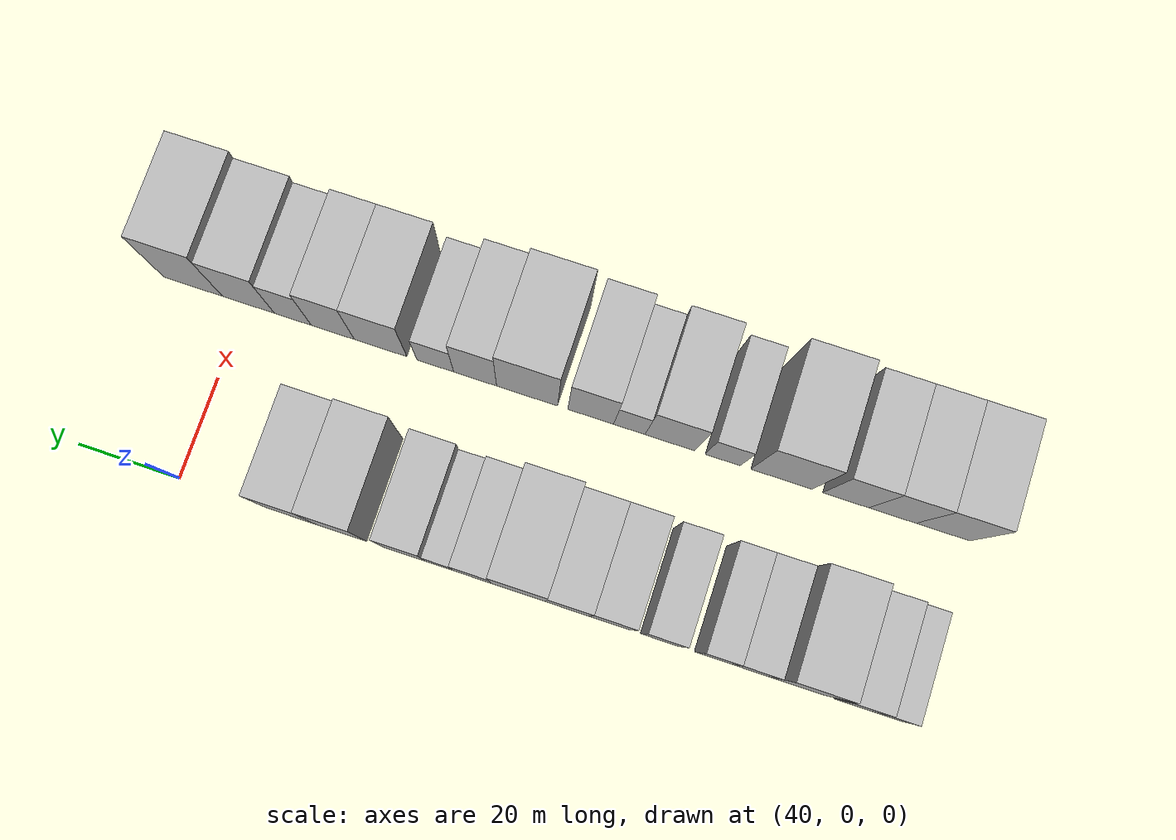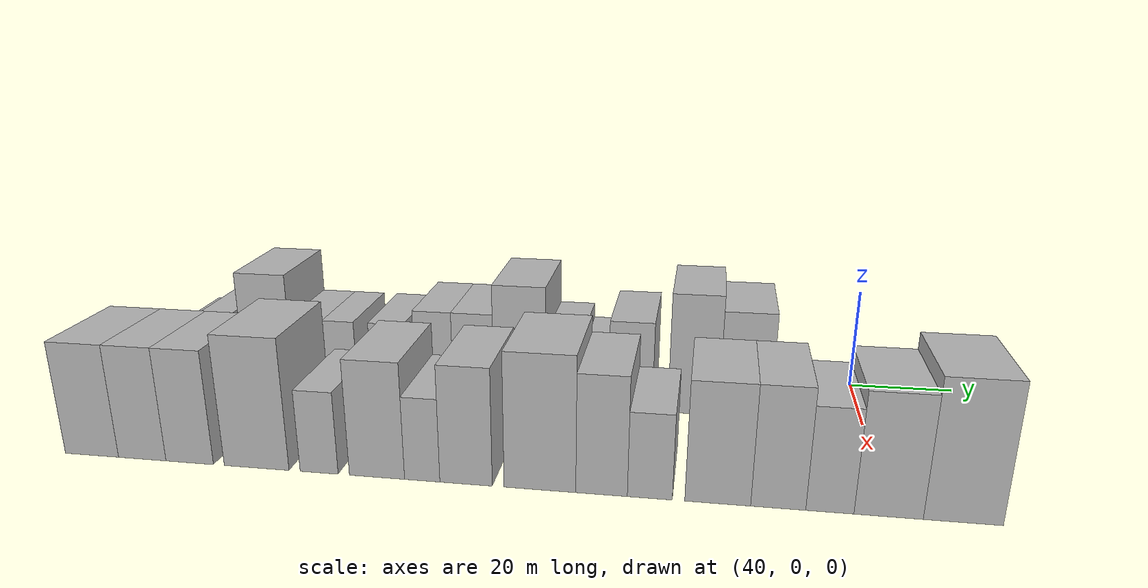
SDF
<sdf version="1.6">
 <world name="default">
  <model name="building_19">
   <static>1</static>
   <pose>50.0000 -134.9416 0 0.000000 0.000000 0.000000</pose>
   <link name="link">
    <pose>0 0 6.00 0 0 0</pose>
    <collision name="collision"><geometry><box><size>20.0000 5.3639 12.0000</size></box></geometry></collision>
    <visual name="visual">
     <cast_shadows>0</cast_shadows>
     <geometry><box><size>20.0000 5.3639 12.0000</size></box></geometry>
     <material>
      <script>
       <uri>model://HANNAS_wall/materials/scripts</uri>
       <uri>model://HANNAS_wall/materials/textures</uri>
       <name>vrc/HANNAS_wall</name>
      </script>
     </material>
    </visual>
   </link>
  </model>
  <model name="building_20">
   <static>1</static>
   <pose>50.0000 -128.8248 0 0.000000 0.000000 0.000000</pose>
   <link name="link">
    <pose>0 0 7.50 0 0 0</pose>
    <collision name="collision"><geometry><box><size>20.0000 6.8697 15.0000</size></box></geometry></collision>
    <visual name="visual">
     <cast_shadows>0</cast_shadows>
     <geometry><box><size>20.0000 6.8697 15.0000</size></box></geometry>
     <material>
      <script>
       <uri>model://HANNAS_wall/materials/scripts</uri>
       <uri>model://HANNAS_wall/materials/textures</uri>
       <name>vrc/HANNAS_wall</name>
      </script>
     </material>
    </visual>
   </link>
  </model>
  <model name="building_21">
   <static>1</static>
   <pose>50.0000 -118.1324 0 0.000000 0.000000 0.000000</pose>
   <link name="link">
    <pose>0 0 12.00 0 0 0</pose>
    <collision name="collision"><geometry><box><size>20.0000 10.5152 24.0000</size></box></geometry></collision>
    <visual name="visual">
     <cast_shadows>0</cast_shadows>
     <geometry><box><size>20.0000 10.5152 24.0000</size></box></geometry>
     <material>
      <script>
       <uri>model://HANNAS_wall/materials/scripts</uri>
       <uri>model://HANNAS_wall/materials/textures</uri>
       <name>vrc/HANNAS_wall</name>
      </script>
     </material>
    </visual>
   </link>
  </model>
  <model name="building_22">
   <static>1</static>
   <pose>50.0000 -109.2981 0 0.000000 0.000000 0.000000</pose>
   <link name="link">
    <pose>0 0 7.50 0 0 0</pose>
    <collision name="collision"><geometry><box><size>20.0000 7.1534 15.0000</size></box></geometry></collision>
    <visual name="visual">
     <cast_shadows>0</cast_shadows>
     <geometry><box><size>20.0000 7.1534 15.0000</size></box></geometry>
     <material>
      <script>
       <uri>model://HANNAS_wall/materials/scripts</uri>
       <uri>model://HANNAS_wall/materials/textures</uri>
       <name>vrc/HANNAS_wall</name>
      </script>
     </material>
    </visual>
   </link>
  </model>
  <model name="building_23">
   <static>1</static>
   <pose>50.0000 -102.4852 0 0.000000 0.000000 0.000000</pose>
   <link name="link">
    <pose>0 0 7.50 0 0 0</pose>
    <collision name="collision"><geometry><box><size>20.0000 6.4725 15.0000</size></box></geometry></collision>
    <visual name="visual">
     <cast_shadows>0</cast_shadows>
     <geometry><box><size>20.0000 6.4725 15.0000</size></box></geometry>
     <material>
      <script>
       <uri>model://HANNAS_wall/materials/scripts</uri>
       <uri>model://HANNAS_wall/materials/textures</uri>
       <name>vrc/HANNAS_wall</name>
      </script>
     </material>
    </visual>
   </link>
  </model>
  <model name="building_24">
   <static>1</static>
   <pose>50.0000 -92.6460 0 0.000000 0.000000 0.000000</pose>
   <link name="link">
    <pose>0 0 7.50 0 0 0</pose>
    <collision name="collision"><geometry><box><size>20.0000 7.2058 15.0000</size></box></geometry></collision>
    <visual name="visual">
     <cast_shadows>0</cast_shadows>
     <geometry><box><size>20.0000 7.2058 15.0000</size></box></geometry>
     <material>
      <script>
       <uri>model://HANNAS_wall/materials/scripts</uri>
       <uri>model://HANNAS_wall/materials/textures</uri>
       <name>vrc/HANNAS_wall</name>
      </script>
     </material>
    </visual>
   </link>
  </model>
  <model name="building_25">
   <static>1</static>
   <pose>50.0000 -83.1704 0 0.000000 0.000000 0.000000</pose>
   <link name="link">
    <pose>0 0 9.00 0 0 0</pose>
    <collision name="collision"><geometry><box><size>20.0000 7.7455 18.0000</size></box></geometry></collision>
    <visual name="visual">
     <cast_shadows>0</cast_shadows>
     <geometry><box><size>20.0000 7.7455 18.0000</size></box></geometry>
     <material>
      <script>
       <uri>model://HANNAS_wall/materials/scripts</uri>
       <uri>model://HANNAS_wall/materials/textures</uri>
       <name>vrc/HANNAS_wall</name>
      </script>
     </material>
    </visual>
   </link>
  </model>
  <model name="building_26">
   <static>1</static>
   <pose>50.0000 -75.1725 0 0.000000 0.000000 0.000000</pose>
   <link name="link">
    <pose>0 0 9.00 0 0 0</pose>
    <collision name="collision"><geometry><box><size>20.0000 8.2501 18.0000</size></box></geometry></collision>
    <visual name="visual">
     <cast_shadows>0</cast_shadows>
     <geometry><box><size>20.0000 8.2501 18.0000</size></box></geometry>
     <material>
      <script>
       <uri>model://HANNAS_wall/materials/scripts</uri>
       <uri>model://HANNAS_wall/materials/textures</uri>
       <name>vrc/HANNAS_wall</name>
      </script>
     </material>
    </visual>
   </link>
  </model>
  <model name="building_27">
   <static>1</static>
   <pose>50.0000 -65.7889 0 0.000000 0.000000 0.000000</pose>
   <link name="link">
    <pose>0 0 12.00 0 0 0</pose>
    <collision name="collision"><geometry><box><size>20.0000 10.5172 24.0000</size></box></geometry></collision>
    <visual name="visual">
     <cast_shadows>0</cast_shadows>
     <geometry><box><size>20.0000 10.5172 24.0000</size></box></geometry>
     <material>
      <script>
       <uri>model://HANNAS_wall/materials/scripts</uri>
       <uri>model://HANNAS_wall/materials/textures</uri>
       <name>vrc/HANNAS_wall</name>
      </script>
     </material>
    </visual>
   </link>
  </model>
  <model name="building_28">
   <static>1</static>
   <pose>50.0000 -56.9479 0 0.000000 0.000000 0.000000</pose>
   <link name="link">
    <pose>0 0 7.50 0 0 0</pose>
    <collision name="collision"><geometry><box><size>20.0000 7.1647 15.0000</size></box></geometry></collision>
    <visual name="visual">
     <cast_shadows>0</cast_shadows>
     <geometry><box><size>20.0000 7.1647 15.0000</size></box></geometry>
     <material>
      <script>
       <uri>model://HANNAS_wall/materials/scripts</uri>
       <uri>model://HANNAS_wall/materials/textures</uri>
       <name>vrc/HANNAS_wall</name>
      </script>
     </material>
    </visual>
   </link>
  </model>
  <model name="building_29">
   <static>1</static>
   <pose>50.0000 -50.7540 0 0.000000 0.000000 0.000000</pose>
   <link name="link">
    <pose>0 0 6.00 0 0 0</pose>
    <collision name="collision"><geometry><box><size>20.0000 5.2231 12.0000</size></box></geometry></collision>
    <visual name="visual">
     <cast_shadows>0</cast_shadows>
     <geometry><box><size>20.0000 5.2231 12.0000</size></box></geometry>
     <material>
      <script>
       <uri>model://HANNAS_wall/materials/scripts</uri>
       <uri>model://HANNAS_wall/materials/textures</uri>
       <name>vrc/HANNAS_wall</name>
      </script>
     </material>
    </visual>
   </link>
  </model>
  <model name="building_30">
   <static>1</static>
   <pose>50.0000 -43.8688 0 0.000000 0.000000 0.000000</pose>
   <link name="link">
    <pose>0 0 9.00 0 0 0</pose>
    <collision name="collision"><geometry><box><size>20.0000 8.5474 18.0000</size></box></geometry></collision>
    <visual name="visual">
     <cast_shadows>0</cast_shadows>
     <geometry><box><size>20.0000 8.5474 18.0000</size></box></geometry>
     <material>
      <script>
       <uri>model://HANNAS_wall/materials/scripts</uri>
       <uri>model://HANNAS_wall/materials/textures</uri>
       <name>vrc/HANNAS_wall</name>
      </script>
     </material>
    </visual>
   </link>
  </model>
  <model name="building_31">
   <static>1</static>
   <pose>50.0000 -31.7296 0 0.000000 0.000000 0.000000</pose>
   <link name="link">
    <pose>0 0 12.00 0 0 0</pose>
    <collision name="collision"><geometry><box><size>20.0000 9.7308 24.0000</size></box></geometry></collision>
    <visual name="visual">
     <cast_shadows>0</cast_shadows>
     <geometry><box><size>20.0000 9.7308 24.0000</size></box></geometry>
     <material>
      <script>
       <uri>model://HANNAS_wall/materials/scripts</uri>
       <uri>model://HANNAS_wall/materials/textures</uri>
       <name>vrc/HANNAS_wall</name>
      </script>
     </material>
    </visual>
   </link>
  </model>
  <model name="building_32">
   <static>1</static>
   <pose>50.0000 -21.9422 0 0.000000 0.000000 0.000000</pose>
   <link name="link">
    <pose>0 0 10.50 0 0 0</pose>
    <collision name="collision"><geometry><box><size>20.0000 9.8439 21.0000</size></box></geometry></collision>
    <visual name="visual">
     <cast_shadows>0</cast_shadows>
     <geometry><box><size>20.0000 9.8439 21.0000</size></box></geometry>
     <material>
      <script>
       <uri>model://HANNAS_wall/materials/scripts</uri>
       <uri>model://HANNAS_wall/materials/textures</uri>
       <name>vrc/HANNAS_wall</name>
      </script>
     </material>
    </visual>
   </link>
  </model>
  <model name="building_75">
   <static>1</static>
   <pose>85.0000 -136.0924 0 0.000000 0.000000 0.000000</pose>
   <link name="link">
    <pose>0 0 10.50 0 0 0</pose>
    <collision name="collision"><geometry><box><size>20.0000 10.1938 21.0000</size></box></geometry></collision>
    <visual name="visual">
     <cast_shadows>0</cast_shadows>
     <geometry><box><size>20.0000 10.1938 21.0000</size></box></geometry>
     <material>
      <script>
       <uri>model://HANNAS_wall/materials/scripts</uri>
       <uri>model://HANNAS_wall/materials/textures</uri>
       <name>vrc/HANNAS_wall</name>
      </script>
     </material>
    </visual>
   </link>
  </model>
  <model name="building_76">
   <static>1</static>
   <pose>85.0000 -126.5070 0 0.000000 0.000000 0.000000</pose>
   <link name="link">
    <pose>0 0 10.50 0 0 0</pose>
    <collision name="collision"><geometry><box><size>20.0000 8.9769 21.0000</size></box></geometry></collision>
    <visual name="visual">
     <cast_shadows>0</cast_shadows>
     <geometry><box><size>20.0000 8.9769 21.0000</size></box></geometry>
     <material>
      <script>
       <uri>model://HANNAS_wall/materials/scripts</uri>
       <uri>model://HANNAS_wall/materials/textures</uri>
       <name>vrc/HANNAS_wall</name>
      </script>
     </material>
    </visual>
   </link>
  </model>
  <model name="building_77">
   <static>1</static>
   <pose>85.0000 -117.5985 0 0.000000 0.000000 0.000000</pose>
   <link name="link">
    <pose>0 0 10.50 0 0 0</pose>
    <collision name="collision"><geometry><box><size>20.0000 8.8401 21.0000</size></box></geometry></collision>
    <visual name="visual">
     <cast_shadows>0</cast_shadows>
     <geometry><box><size>20.0000 8.8401 21.0000</size></box></geometry>
     <material>
      <script>
       <uri>model://HANNAS_wall/materials/scripts</uri>
       <uri>model://HANNAS_wall/materials/textures</uri>
       <name>vrc/HANNAS_wall</name>
      </script>
     </material>
    </visual>
   </link>
  </model>
  <model name="building_78">
   <static>1</static>
   <pose>85.0000 -105.2745 0 0.000000 0.000000 0.000000</pose>
   <link name="link">
    <pose>0 0 12.00 0 0 0</pose>
    <collision name="collision"><geometry><box><size>20.0000 11.8079 24.0000</size></box></geometry></collision>
    <visual name="visual">
     <cast_shadows>0</cast_shadows>
     <geometry><box><size>20.0000 11.8079 24.0000</size></box></geometry>
     <material>
      <script>
       <uri>model://HANNAS_wall/materials/scripts</uri>
       <uri>model://HANNAS_wall/materials/textures</uri>
       <name>vrc/HANNAS_wall</name>
      </script>
     </material>
    </visual>
   </link>
  </model>
  <model name="building_79">
   <static>1</static>
   <pose>85.0000 -93.9713 0 0.000000 0.000000 0.000000</pose>
   <link name="link">
    <pose>0 0 7.50 0 0 0</pose>
    <collision name="collision"><geometry><box><size>20.0000 6.7985 15.0000</size></box></geometry></collision>
    <visual name="visual">
     <cast_shadows>0</cast_shadows>
     <geometry><box><size>20.0000 6.7985 15.0000</size></box></geometry>
     <material>
      <script>
       <uri>model://HANNAS_wall/materials/scripts</uri>
       <uri>model://HANNAS_wall/materials/textures</uri>
       <name>vrc/HANNAS_wall</name>
      </script>
     </material>
    </visual>
   </link>
  </model>
  <model name="building_80">
   <static>1</static>
   <pose>85.0000 -83.7237 0 0.000000 0.000000 0.000000</pose>
   <link name="link">
    <pose>0 0 10.50 0 0 0</pose>
    <collision name="collision"><geometry><box><size>20.0000 9.6968 21.0000</size></box></geometry></collision>
    <visual name="visual">
     <cast_shadows>0</cast_shadows>
     <geometry><box><size>20.0000 9.6968 21.0000</size></box></geometry>
     <material>
      <script>
       <uri>model://HANNAS_wall/materials/scripts</uri>
       <uri>model://HANNAS_wall/materials/textures</uri>
       <name>vrc/HANNAS_wall</name>
      </script>
     </material>
    </visual>
   </link>
  </model>
  <model name="building_81">
   <static>1</static>
   <pose>85.0000 -75.8164 0 0.000000 0.000000 0.000000</pose>
   <link name="link">
    <pose>0 0 7.50 0 0 0</pose>
    <collision name="collision"><geometry><box><size>20.0000 6.1177 15.0000</size></box></geometry></collision>
    <visual name="visual">
     <cast_shadows>0</cast_shadows>
     <geometry><box><size>20.0000 6.1177 15.0000</size></box></geometry>
     <material>
      <script>
       <uri>model://HANNAS_wall/materials/scripts</uri>
       <uri>model://HANNAS_wall/materials/textures</uri>
       <name>vrc/HANNAS_wall</name>
      </script>
     </material>
    </visual>
   </link>
  </model>
  <model name="building_82">
   <static>1</static>
   <pose>85.0000 -68.2785 0 0.000000 0.000000 0.000000</pose>
   <link name="link">
    <pose>0 0 10.50 0 0 0</pose>
    <collision name="collision"><geometry><box><size>20.0000 8.9581 21.0000</size></box></geometry></collision>
    <visual name="visual">
     <cast_shadows>0</cast_shadows>
     <geometry><box><size>20.0000 8.9581 21.0000</size></box></geometry>
     <material>
      <script>
       <uri>model://HANNAS_wall/materials/scripts</uri>
       <uri>model://HANNAS_wall/materials/textures</uri>
       <name>vrc/HANNAS_wall</name>
      </script>
     </material>
    </visual>
   </link>
  </model>
  <model name="building_83">
   <static>1</static>
   <pose>85.0000 -55.8044 0 0.000000 0.000000 0.000000</pose>
   <link name="link">
    <pose>0 0 12.00 0 0 0</pose>
    <collision name="collision"><geometry><box><size>20.0000 11.9902 24.0000</size></box></geometry></collision>
    <visual name="visual">
     <cast_shadows>0</cast_shadows>
     <geometry><box><size>20.0000 11.9902 24.0000</size></box></geometry>
     <material>
      <script>
       <uri>model://HANNAS_wall/materials/scripts</uri>
       <uri>model://HANNAS_wall/materials/textures</uri>
       <name>vrc/HANNAS_wall</name>
      </script>
     </material>
    </visual>
   </link>
  </model>
  <model name="building_84">
   <static>1</static>
   <pose>85.0000 -45.5765 0 0.000000 0.000000 0.000000</pose>
   <link name="link">
    <pose>0 0 10.50 0 0 0</pose>
    <collision name="collision"><geometry><box><size>20.0000 8.4657 21.0000</size></box></geometry></collision>
    <visual name="visual">
     <cast_shadows>0</cast_shadows>
     <geometry><box><size>20.0000 8.4657 21.0000</size></box></geometry>
     <material>
      <script>
       <uri>model://HANNAS_wall/materials/scripts</uri>
       <uri>model://HANNAS_wall/materials/textures</uri>
       <name>vrc/HANNAS_wall</name>
      </script>
     </material>
    </visual>
   </link>
  </model>
  <model name="building_85">
   <static>1</static>
   <pose>85.0000 -37.7026 0 0.000000 0.000000 0.000000</pose>
   <link name="link">
    <pose>0 0 7.50 0 0 0</pose>
    <collision name="collision"><geometry><box><size>20.0000 7.2822 15.0000</size></box></geometry></collision>
    <visual name="visual">
     <cast_shadows>0</cast_shadows>
     <geometry><box><size>20.0000 7.2822 15.0000</size></box></geometry>
     <material>
      <script>
       <uri>model://HANNAS_wall/materials/scripts</uri>
       <uri>model://HANNAS_wall/materials/textures</uri>
       <name>vrc/HANNAS_wall</name>
      </script>
     </material>
    </visual>
   </link>
  </model>
  <model name="building_86">
   <static>1</static>
   <pose>85.0000 -26.8328 0 0.000000 0.000000 0.000000</pose>
   <link name="link">
    <pose>0 0 10.50 0 0 0</pose>
    <collision name="collision"><geometry><box><size>20.0000 10.4574 21.0000</size></box></geometry></collision>
    <visual name="visual">
     <cast_shadows>0</cast_shadows>
     <geometry><box><size>20.0000 10.4574 21.0000</size></box></geometry>
     <material>
      <script>
       <uri>model://HANNAS_wall/materials/scripts</uri>
       <uri>model://HANNAS_wall/materials/textures</uri>
       <name>vrc/HANNAS_wall</name>
      </script>
     </material>
    </visual>
   </link>
  </model>
  <model name="building_87">
   <static>1</static>
   <pose>85.0000 -17.3071 0 0.000000 0.000000 0.000000</pose>
   <link name="link">
    <pose>0 0 10.50 0 0 0</pose>
    <collision name="collision"><geometry><box><size>20.0000 8.5941 21.0000</size></box></geometry></collision>
    <visual name="visual">
     <cast_shadows>0</cast_shadows>
     <geometry><box><size>20.0000 8.5941 21.0000</size></box></geometry>
     <material>
      <script>
       <uri>model://HANNAS_wall/materials/scripts</uri>
       <uri>model://HANNAS_wall/materials/textures</uri>
       <name>vrc/HANNAS_wall</name>
      </script>
     </material>
    </visual>
   </link>
  </model>
  <model name="building_88">
   <static>1</static>
   <pose>85.0000 -9.3071 0 0.000000 0.000000 0.000000</pose>
   <link name="link">
    <pose>0 0 9.00 0 0 0</pose>
    <collision name="collision"><geometry><box><size>20.0000 7.4059 18.0000</size></box></geometry></collision>
    <visual name="visual">
     <cast_shadows>0</cast_shadows>
     <geometry><box><size>20.0000 7.4059 18.0000</size></box></geometry>
     <material>
      <script>
       <uri>model://HANNAS_wall/materials/scripts</uri>
       <uri>model://HANNAS_wall/materials/textures</uri>
       <name>vrc/HANNAS_wall</name>
      </script>
     </material>
    </visual>
   </link>
  </model>
  <model name="building_89">
   <static>1</static>
   <pose>85.0000 -0.3641 0 0.000000 0.000000 0.000000</pose>
   <link name="link">
    <pose>0 0 10.50 0 0 0</pose>
    <collision name="collision"><geometry><box><size>20.0000 10.4802 21.0000</size></box></geometry></collision>
    <visual name="visual">
     <cast_shadows>0</cast_shadows>
     <geometry><box><size>20.0000 10.4802 21.0000</size></box></geometry>
     <material>
      <script>
       <uri>model://HANNAS_wall/materials/scripts</uri>
       <uri>model://HANNAS_wall/materials/textures</uri>
       <name>vrc/HANNAS_wall</name>
      </script>
     </material>
    </visual>
   </link>
  </model>
  <model name="building_90">
   <static>1</static>
   <pose>85.0000 10.8096 0 0.000000 0.000000 0.000000</pose>
   <link name="link">
    <pose>0 0 12.00 0 0 0</pose>
    <collision name="collision"><geometry><box><size>20.0000 11.8672 24.0000</size></box></geometry></collision>
    <visual name="visual">
     <cast_shadows>0</cast_shadows>
     <geometry><box><size>20.0000 11.8672 24.0000</size></box></geometry>
     <material>
      <script>
       <uri>model://HANNAS_wall/materials/scripts</uri>
       <uri>model://HANNAS_wall/materials/textures</uri>
       <name>vrc/HANNAS_wall</name>
      </script>
     </material>
    </visual>
   </link>
  </model>
 </world>
</sdf>
